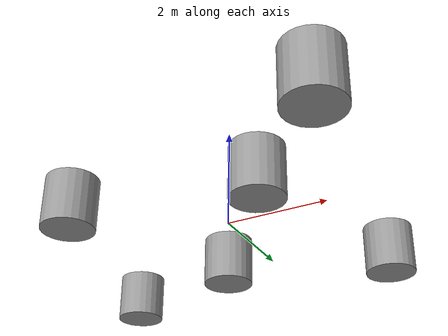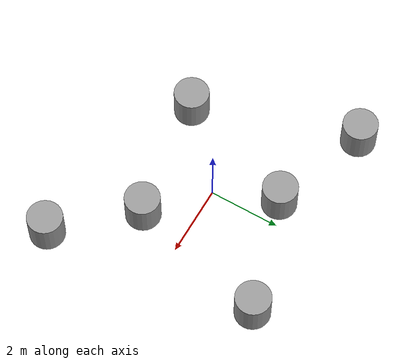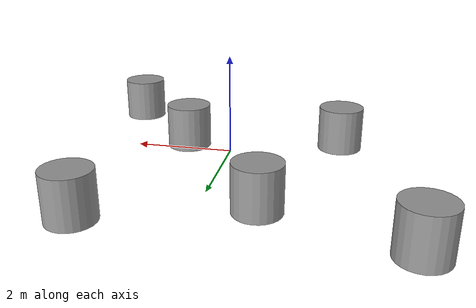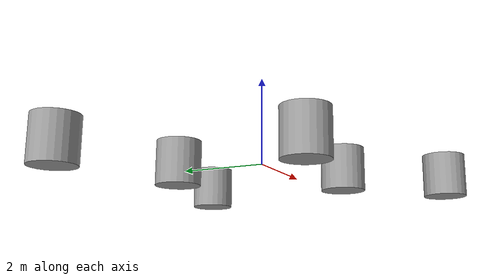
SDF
<?xml version='1.0'?>
<sdf version='1.7'>
  <model name='simple'>
    <link name='link_0'>
      <inertial>
        <mass>1</mass>
        <inertia>
          <ixx>0.145833</ixx>
          <ixy>0</ixy>
          <ixz>0</ixz>
          <iyy>0.145833</iyy>
          <iyz>0</iyz>
          <izz>0.125</izz>
        </inertia>
      </inertial>
      <pose>-3.70091 2.5956 0 0 -0 0</pose>
      <visual name='visual'>
        <pose>0 0 0 0 -0 0</pose>
        <geometry>
          <cylinder>
            <radius>0.5</radius>
            <length>1</length>
          </cylinder>
        </geometry>
        <material>
          <lighting>1</lighting>
          <script>
            <uri>file://media/materials/scripts/gazebo.material</uri>
            <name>Gazebo/Grey</name>
          </script>
          <shader type='pixel'/>
        </material>
        <transparency>0</transparency>
        <cast_shadows>1</cast_shadows>
      </visual>
      <collision name='collision'>
        <laser_retro>0</laser_retro>
        <max_contacts>10</max_contacts>
        <pose>0 0 0 0 -0 0</pose>
        <geometry>
          <cylinder>
            <radius>0.5</radius>
            <length>1</length>
          </cylinder>
        </geometry>
        <surface>
          <friction>
            <ode>
              <mu>1</mu>
              <mu2>1</mu2>
              <fdir1>0 0 0</fdir1>
              <slip1>0</slip1>
              <slip2>0</slip2>
            </ode>
            <torsional>
              <coefficient>1</coefficient>
              <patch_radius>0</patch_radius>
              <surface_radius>0</surface_radius>
              <use_patch_radius>1</use_patch_radius>
              <ode>
                <slip>0</slip>
              </ode>
            </torsional>
          </friction>
          <bounce>
            <restitution_coefficient>0</restitution_coefficient>
            <threshold>1e+06</threshold>
          </bounce>
          <contact>
            <collide_without_contact>0</collide_without_contact>
            <collide_without_contact_bitmask>1</collide_without_contact_bitmask>
            <collide_bitmask>1</collide_bitmask>
            <ode>
              <soft_cfm>0</soft_cfm>
              <soft_erp>0.2</soft_erp>
              <kp>1e+13</kp>
              <kd>1</kd>
              <max_vel>0.01</max_vel>
              <min_depth>0</min_depth>
            </ode>
            <bullet>
              <split_impulse>1</split_impulse>
              <split_impulse_penetration_threshold>-0.01</split_impulse_penetration_threshold>
              <soft_cfm>0</soft_cfm>
              <soft_erp>0.2</soft_erp>
              <kp>1e+13</kp>
              <kd>1</kd>
            </bullet>
          </contact>
        </surface>
      </collision>
    </link>
    <link name='link_1'>
      <inertial>
        <mass>1</mass>
        <inertia>
          <ixx>0.145833</ixx>
          <ixy>0</ixy>
          <ixz>0</ixz>
          <iyy>0.145833</iyy>
          <iyz>0</iyz>
          <izz>0.125</izz>
        </inertia>
      </inertial>
      <pose>-2.21182 -1.95979 0 0 -0 0</pose>
      <visual name='visual'>
        <pose>0 0 0 0 -0 0</pose>
        <geometry>
          <cylinder>
            <radius>0.5</radius>
            <length>1</length>
          </cylinder>
        </geometry>
        <material>
          <lighting>1</lighting>
          <script>
            <uri>file://media/materials/scripts/gazebo.material</uri>
            <name>Gazebo/Grey</name>
          </script>
          <shader type='pixel'/>
        </material>
        <transparency>0</transparency>
        <cast_shadows>1</cast_shadows>
      </visual>
      <collision name='collision'>
        <laser_retro>0</laser_retro>
        <max_contacts>10</max_contacts>
        <pose>0 0 0 0 -0 0</pose>
        <geometry>
          <cylinder>
            <radius>0.5</radius>
            <length>1</length>
          </cylinder>
        </geometry>
        <surface>
          <friction>
            <ode>
              <mu>1</mu>
              <mu2>1</mu2>
              <fdir1>0 0 0</fdir1>
              <slip1>0</slip1>
              <slip2>0</slip2>
            </ode>
            <torsional>
              <coefficient>1</coefficient>
              <patch_radius>0</patch_radius>
              <surface_radius>0</surface_radius>
              <use_patch_radius>1</use_patch_radius>
              <ode>
                <slip>0</slip>
              </ode>
            </torsional>
          </friction>
          <bounce>
            <restitution_coefficient>0</restitution_coefficient>
            <threshold>1e+06</threshold>
          </bounce>
          <contact>
            <collide_without_contact>0</collide_without_contact>
            <collide_without_contact_bitmask>1</collide_without_contact_bitmask>
            <collide_bitmask>1</collide_bitmask>
            <ode>
              <soft_cfm>0</soft_cfm>
              <soft_erp>0.2</soft_erp>
              <kp>1e+13</kp>
              <kd>1</kd>
              <max_vel>0.01</max_vel>
              <min_depth>0</min_depth>
            </ode>
            <bullet>
              <split_impulse>1</split_impulse>
              <split_impulse_penetration_threshold>-0.01</split_impulse_penetration_threshold>
              <soft_cfm>0</soft_cfm>
              <soft_erp>0.2</soft_erp>
              <kp>1e+13</kp>
              <kd>1</kd>
            </bullet>
          </contact>
        </surface>
      </collision>
    </link>
    <link name='link_2'>
      <inertial>
        <mass>1</mass>
        <inertia>
          <ixx>0.145833</ixx>
          <ixy>0</ixy>
          <ixz>0</ixz>
          <iyy>0.145833</iyy>
          <iyz>0</iyz>
          <izz>0.125</izz>
        </inertia>
      </inertial>
      <pose>-0.864175 1.63038 0 0 -0 0</pose>
      <visual name='visual'>
        <pose>0 0 0 0 -0 0</pose>
        <geometry>
          <cylinder>
            <radius>0.5</radius>
            <length>1</length>
          </cylinder>
        </geometry>
        <material>
          <lighting>1</lighting>
          <script>
            <uri>file://media/materials/scripts/gazebo.material</uri>
            <name>Gazebo/Grey</name>
          </script>
          <shader type='pixel'/>
        </material>
        <transparency>0</transparency>
        <cast_shadows>1</cast_shadows>
      </visual>
      <collision name='collision'>
        <laser_retro>0</laser_retro>
        <max_contacts>10</max_contacts>
        <pose>0 0 0 0 -0 0</pose>
        <geometry>
          <cylinder>
            <radius>0.5</radius>
            <length>1</length>
          </cylinder>
        </geometry>
        <surface>
          <friction>
            <ode>
              <mu>1</mu>
              <mu2>1</mu2>
              <fdir1>0 0 0</fdir1>
              <slip1>0</slip1>
              <slip2>0</slip2>
            </ode>
            <torsional>
              <coefficient>1</coefficient>
              <patch_radius>0</patch_radius>
              <surface_radius>0</surface_radius>
              <use_patch_radius>1</use_patch_radius>
              <ode>
                <slip>0</slip>
              </ode>
            </torsional>
          </friction>
          <bounce>
            <restitution_coefficient>0</restitution_coefficient>
            <threshold>1e+06</threshold>
          </bounce>
          <contact>
            <collide_without_contact>0</collide_without_contact>
            <collide_without_contact_bitmask>1</collide_without_contact_bitmask>
            <collide_bitmask>1</collide_bitmask>
            <ode>
              <soft_cfm>0</soft_cfm>
              <soft_erp>0.2</soft_erp>
              <kp>1e+13</kp>
              <kd>1</kd>
              <max_vel>0.01</max_vel>
              <min_depth>0</min_depth>
            </ode>
            <bullet>
              <split_impulse>1</split_impulse>
              <split_impulse_penetration_threshold>-0.01</split_impulse_penetration_threshold>
              <soft_cfm>0</soft_cfm>
              <soft_erp>0.2</soft_erp>
              <kp>1e+13</kp>
              <kd>1</kd>
            </bullet>
          </contact>
        </surface>
      </collision>
    </link>
    <link name='link_3'>
      <inertial>
        <mass>1</mass>
        <inertia>
          <ixx>0.145833</ixx>
          <ixy>0</ixy>
          <ixz>0</ixz>
          <iyy>0.145833</iyy>
          <iyz>0</iyz>
          <izz>0.125</izz>
        </inertia>
      </inertial>
      <pose>1.30892 -1.44497 0 0 -0 0</pose>
      <visual name='visual'>
        <pose>0 0 0 0 -0 0</pose>
        <geometry>
          <cylinder>
            <radius>0.5</radius>
            <length>1</length>
          </cylinder>
        </geometry>
        <material>
          <lighting>1</lighting>
          <script>
            <uri>file://media/materials/scripts/gazebo.material</uri>
            <name>Gazebo/Grey</name>
          </script>
          <shader type='pixel'/>
        </material>
        <transparency>0</transparency>
        <cast_shadows>1</cast_shadows>
      </visual>
      <collision name='collision'>
        <laser_retro>0</laser_retro>
        <max_contacts>10</max_contacts>
        <pose>0 0 0 0 -0 0</pose>
        <geometry>
          <cylinder>
            <radius>0.5</radius>
            <length>1</length>
          </cylinder>
        </geometry>
        <surface>
          <friction>
            <ode>
              <mu>1</mu>
              <mu2>1</mu2>
              <fdir1>0 0 0</fdir1>
              <slip1>0</slip1>
              <slip2>0</slip2>
            </ode>
            <torsional>
              <coefficient>1</coefficient>
              <patch_radius>0</patch_radius>
              <surface_radius>0</surface_radius>
              <use_patch_radius>1</use_patch_radius>
              <ode>
                <slip>0</slip>
              </ode>
            </torsional>
          </friction>
          <bounce>
            <restitution_coefficient>0</restitution_coefficient>
            <threshold>1e+06</threshold>
          </bounce>
          <contact>
            <collide_without_contact>0</collide_without_contact>
            <collide_without_contact_bitmask>1</collide_without_contact_bitmask>
            <collide_bitmask>1</collide_bitmask>
            <ode>
              <soft_cfm>0</soft_cfm>
              <soft_erp>0.2</soft_erp>
              <kp>1e+13</kp>
              <kd>1</kd>
              <max_vel>0.01</max_vel>
              <min_depth>0</min_depth>
            </ode>
            <bullet>
              <split_impulse>1</split_impulse>
              <split_impulse_penetration_threshold>-0.01</split_impulse_penetration_threshold>
              <soft_cfm>0</soft_cfm>
              <soft_erp>0.2</soft_erp>
              <kp>1e+13</kp>
              <kd>1</kd>
            </bullet>
          </contact>
        </surface>
      </collision>
    </link>
    <link name='link_4'>
      <inertial>
        <mass>1</mass>
        <inertia>
          <ixx>0.145833</ixx>
          <ixy>0</ixy>
          <ixz>0</ixz>
          <iyy>0.145833</iyy>
          <iyz>0</iyz>
          <izz>0.125</izz>
        </inertia>
      </inertial>
      <pose>2.3477 2.5963 0 0 -0 0</pose>
      <visual name='visual'>
        <pose>0 0 0 0 -0 0</pose>
        <geometry>
          <cylinder>
            <radius>0.5</radius>
            <length>1</length>
          </cylinder>
        </geometry>
        <material>
          <lighting>1</lighting>
          <script>
            <uri>file://media/materials/scripts/gazebo.material</uri>
            <name>Gazebo/Grey</name>
          </script>
          <shader type='pixel'/>
        </material>
        <transparency>0</transparency>
        <cast_shadows>1</cast_shadows>
      </visual>
      <collision name='collision'>
        <laser_retro>0</laser_retro>
        <max_contacts>10</max_contacts>
        <pose>0 0 0 0 -0 0</pose>
        <geometry>
          <cylinder>
            <radius>0.5</radius>
            <length>1</length>
          </cylinder>
        </geometry>
        <surface>
          <friction>
            <ode>
              <mu>1</mu>
              <mu2>1</mu2>
              <fdir1>0 0 0</fdir1>
              <slip1>0</slip1>
              <slip2>0</slip2>
            </ode>
            <torsional>
              <coefficient>1</coefficient>
              <patch_radius>0</patch_radius>
              <surface_radius>0</surface_radius>
              <use_patch_radius>1</use_patch_radius>
              <ode>
                <slip>0</slip>
              </ode>
            </torsional>
          </friction>
          <bounce>
            <restitution_coefficient>0</restitution_coefficient>
            <threshold>1e+06</threshold>
          </bounce>
          <contact>
            <collide_without_contact>0</collide_without_contact>
            <collide_without_contact_bitmask>1</collide_without_contact_bitmask>
            <collide_bitmask>1</collide_bitmask>
            <ode>
              <soft_cfm>0</soft_cfm>
              <soft_erp>0.2</soft_erp>
              <kp>1e+13</kp>
              <kd>1</kd>
              <max_vel>0.01</max_vel>
              <min_depth>0</min_depth>
            </ode>
            <bullet>
              <split_impulse>1</split_impulse>
              <split_impulse_penetration_threshold>-0.01</split_impulse_penetration_threshold>
              <soft_cfm>0</soft_cfm>
              <soft_erp>0.2</soft_erp>
              <kp>1e+13</kp>
              <kd>1</kd>
            </bullet>
          </contact>
        </surface>
      </collision>
    </link>
    <link name='link_5'>
      <inertial>
        <mass>1</mass>
        <inertia>
          <ixx>0.145833</ixx>
          <ixy>0</ixy>
          <ixz>0</ixz>
          <iyy>0.145833</iyy>
          <iyz>0</iyz>
          <izz>0.125</izz>
        </inertia>
      </inertial>
      <pose>3.12028 -3.41753 0 0 -0 0</pose>
      <visual name='visual'>
        <pose>0 0 0 0 -0 0</pose>
        <geometry>
          <cylinder>
            <radius>0.5</radius>
            <length>1</length>
          </cylinder>
        </geometry>
        <material>
          <lighting>1</lighting>
          <script>
            <uri>file://media/materials/scripts/gazebo.material</uri>
            <name>Gazebo/Grey</name>
          </script>
          <shader type='pixel'/>
        </material>
        <transparency>0</transparency>
        <cast_shadows>1</cast_shadows>
      </visual>
      <collision name='collision'>
        <laser_retro>0</laser_retro>
        <max_contacts>10</max_contacts>
        <pose>0 0 0 0 -0 0</pose>
        <geometry>
          <cylinder>
            <radius>0.5</radius>
            <length>1</length>
          </cylinder>
        </geometry>
        <surface>
          <friction>
            <ode>
              <mu>1</mu>
              <mu2>1</mu2>
              <fdir1>0 0 0</fdir1>
              <slip1>0</slip1>
              <slip2>0</slip2>
            </ode>
            <torsional>
              <coefficient>1</coefficient>
              <patch_radius>0</patch_radius>
              <surface_radius>0</surface_radius>
              <use_patch_radius>1</use_patch_radius>
              <ode>
                <slip>0</slip>
              </ode>
            </torsional>
          </friction>
          <bounce>
            <restitution_coefficient>0</restitution_coefficient>
            <threshold>1e+06</threshold>
          </bounce>
          <contact>
            <collide_without_contact>0</collide_without_contact>
            <collide_without_contact_bitmask>1</collide_without_contact_bitmask>
            <collide_bitmask>1</collide_bitmask>
            <ode>
              <soft_cfm>0</soft_cfm>
              <soft_erp>0.2</soft_erp>
              <kp>1e+13</kp>
              <kd>1</kd>
              <max_vel>0.01</max_vel>
              <min_depth>0</min_depth>
            </ode>
            <bullet>
              <split_impulse>1</split_impulse>
              <split_impulse_penetration_threshold>-0.01</split_impulse_penetration_threshold>
              <soft_cfm>0</soft_cfm>
              <soft_erp>0.2</soft_erp>
              <kp>1e+13</kp>
              <kd>1</kd>
            </bullet>
          </contact>
        </surface>
      </collision>
    </link>
    <static>0</static>
    <allow_auto_disable>1</allow_auto_disable>
  </model>
</sdf>
